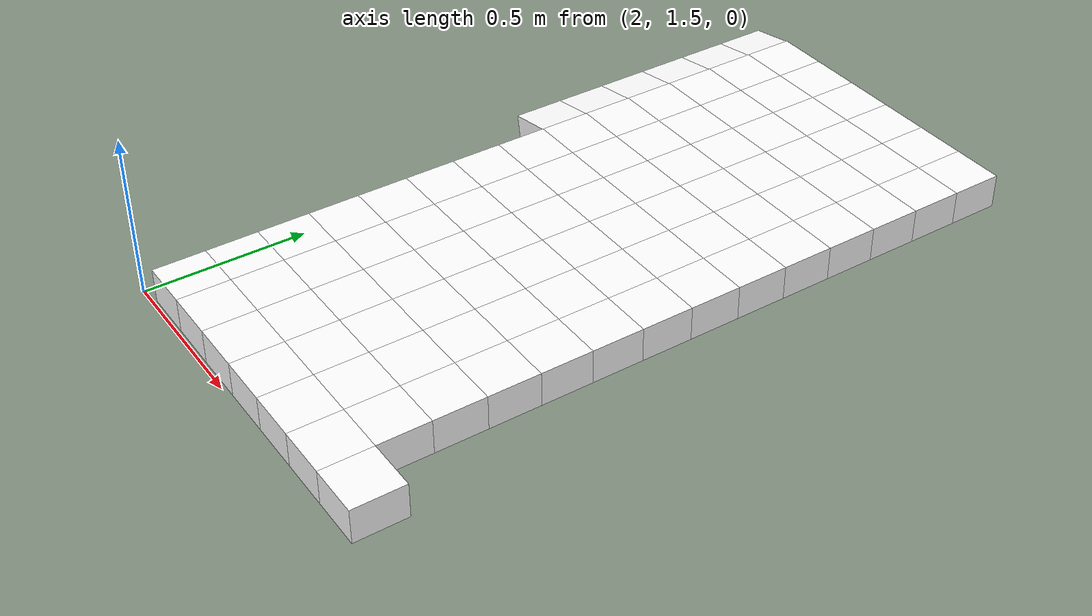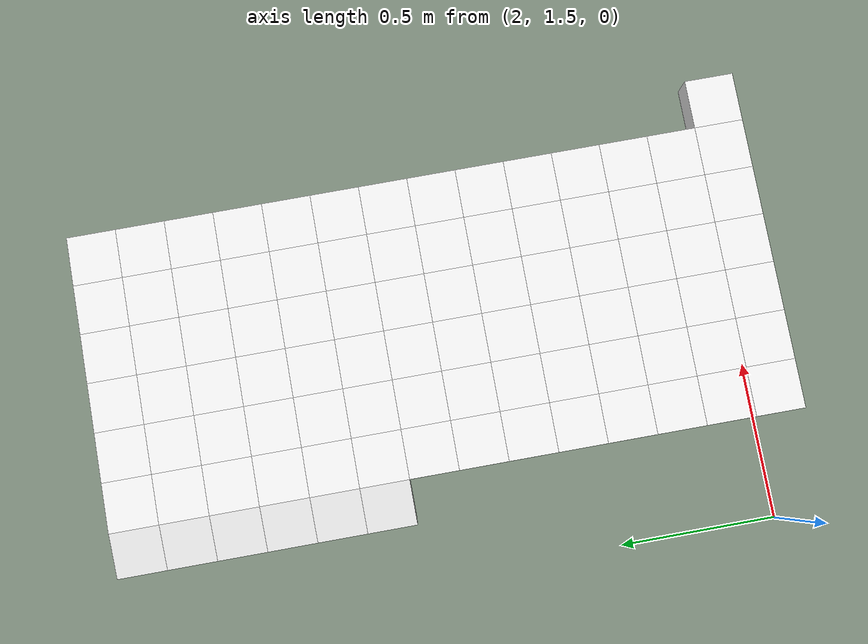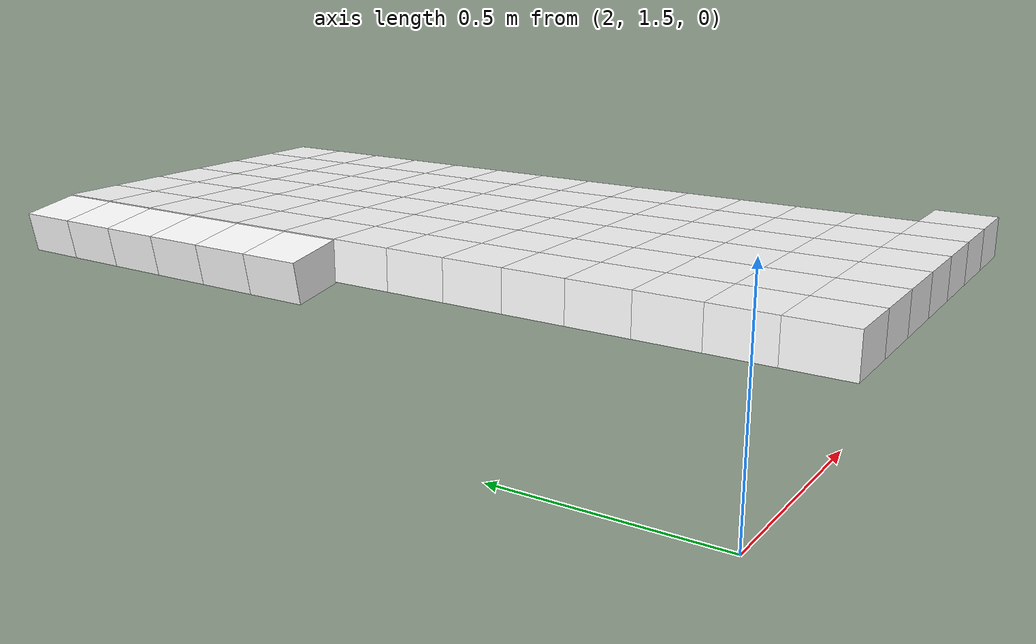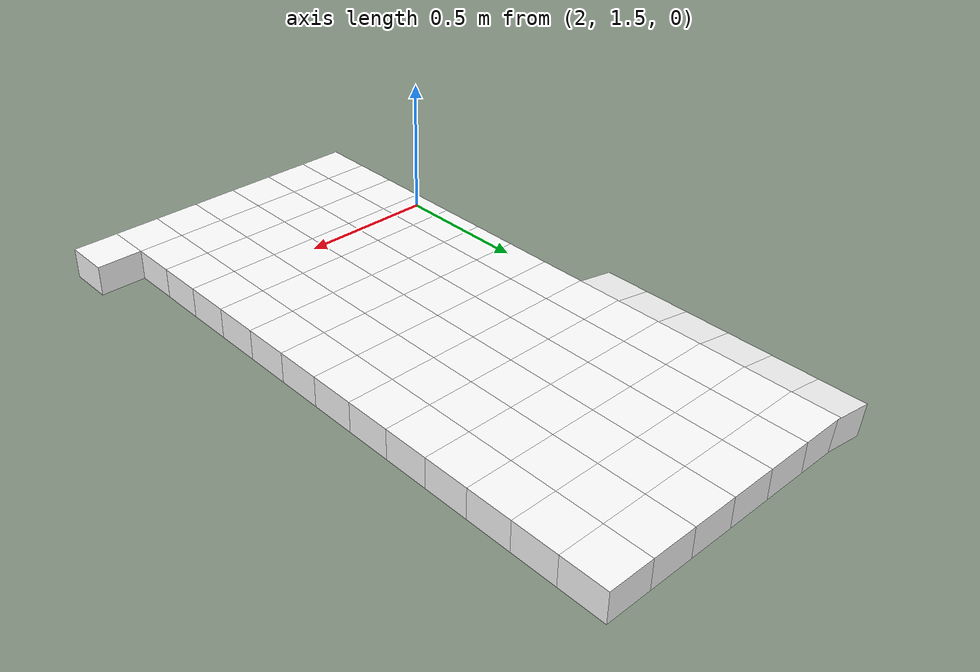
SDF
<sdf version="1.7">
 <world name="default">
  <include><uri>model://sun</uri></include>
  <model name="static_environment">
   <static>true</static>
   <link name="region_549">
    <pose>2.2721418591427653 2.6999999999999997 0.24759631532031606 0.0 -0.175 0.0</pose>
    <collision name="region_549_collision">
     <geometry><box><size>0.15 0.15 0.1</size></box></geometry>
     <surface><friction><ode><mu>1.0</mu><mu2>1.0</mu2></ode></friction></surface>
    </collision>
    <visual name="region_549_visual">
     <geometry><box><size>0.15 0.15 0.1</size></box></geometry>
     <material><ambient>1.0 1.0 1.0 1.0</ambient><diffuse>1.0 1.0 1.0 1.0</diffuse></material>
    </visual>
   </link>
   <link name="region_559">
    <pose>2.2721418591427653 2.8499999999999996 0.24759631532031606 0.0 -0.175 0.0</pose>
    <collision name="region_559_collision">
     <geometry><box><size>0.15 0.15 0.1</size></box></geometry>
     <surface><friction><ode><mu>1.0</mu><mu2>1.0</mu2></ode></friction></surface>
    </collision>
    <visual name="region_559_visual">
     <geometry><box><size>0.15 0.15 0.1</size></box></geometry>
     <material><ambient>1.0 1.0 1.0 1.0</ambient><diffuse>1.0 1.0 1.0 1.0</diffuse></material>
    </visual>
   </link>
   <link name="region_569">
    <pose>2.2721418591427653 2.9999999999999996 0.24759631532031606 0.0 -0.175 0.0</pose>
    <collision name="region_569_collision">
     <geometry><box><size>0.15 0.15 0.1</size></box></geometry>
     <surface><friction><ode><mu>1.0</mu><mu2>1.0</mu2></ode></friction></surface>
    </collision>
    <visual name="region_569_visual">
     <geometry><box><size>0.15 0.15 0.1</size></box></geometry>
     <material><ambient>1.0 1.0 1.0 1.0</ambient><diffuse>1.0 1.0 1.0 1.0</diffuse></material>
    </visual>
   </link>
   <link name="region_579">
    <pose>2.2721418591427653 3.1499999999999995 0.24759631532031606 0.0 -0.175 0.0</pose>
    <collision name="region_579_collision">
     <geometry><box><size>0.15 0.15 0.1</size></box></geometry>
     <surface><friction><ode><mu>1.0</mu><mu2>1.0</mu2></ode></friction></surface>
    </collision>
    <visual name="region_579_visual">
     <geometry><box><size>0.15 0.15 0.1</size></box></geometry>
     <material><ambient>1.0 1.0 1.0 1.0</ambient><diffuse>1.0 1.0 1.0 1.0</diffuse></material>
    </visual>
   </link>
   <link name="region_589">
    <pose>2.2721418591427653 3.2999999999999994 0.24759631532031606 0.0 -0.175 0.0</pose>
    <collision name="region_589_collision">
     <geometry><box><size>0.15 0.15 0.1</size></box></geometry>
     <surface><friction><ode><mu>1.0</mu><mu2>1.0</mu2></ode></friction></surface>
    </collision>
    <visual name="region_589_visual">
     <geometry><box><size>0.15 0.15 0.1</size></box></geometry>
     <material><ambient>1.0 1.0 1.0 1.0</ambient><diffuse>1.0 1.0 1.0 1.0</diffuse></material>
    </visual>
   </link>
   <link name="region_599">
    <pose>2.2721418591427653 3.4499999999999993 0.24759631532031606 0.0 -0.175 0.0</pose>
    <collision name="region_599_collision">
     <geometry><box><size>0.15 0.15 0.1</size></box></geometry>
     <surface><friction><ode><mu>1.0</mu><mu2>1.0</mu2></ode></friction></surface>
    </collision>
    <visual name="region_599_visual">
     <geometry><box><size>0.15 0.15 0.1</size></box></geometry>
     <material><ambient>1.0 1.0 1.0 1.0</ambient><diffuse>1.0 1.0 1.0 1.0</diffuse></material>
    </visual>
   </link>
   <link name="region_720">
    <pose>2.4000000000000004 1.5 0.26 0.0 0.0 0.0</pose>
    <collision name="region_720_collision">
     <geometry><box><size>0.15 0.15 0.1</size></box></geometry>
     <surface><friction><ode><mu>1.0</mu><mu2>1.0</mu2></ode></friction></surface>
    </collision>
    <visual name="region_720_visual">
     <geometry><box><size>0.15 0.15 0.1</size></box></geometry>
     <material><ambient>1.0 1.0 1.0 1.0</ambient><diffuse>1.0 1.0 1.0 1.0</diffuse></material>
    </visual>
   </link>
   <link name="region_721">
    <pose>2.5500000000000007 1.5 0.26 0.0 0.0 0.0</pose>
    <collision name="region_721_collision">
     <geometry><box><size>0.15 0.15 0.1</size></box></geometry>
     <surface><friction><ode><mu>1.0</mu><mu2>1.0</mu2></ode></friction></surface>
    </collision>
    <visual name="region_721_visual">
     <geometry><box><size>0.15 0.15 0.1</size></box></geometry>
     <material><ambient>1.0 1.0 1.0 1.0</ambient><diffuse>1.0 1.0 1.0 1.0</diffuse></material>
    </visual>
   </link>
   <link name="region_722">
    <pose>2.700000000000001 1.5 0.26 0.0 0.0 0.0</pose>
    <collision name="region_722_collision">
     <geometry><box><size>0.15 0.15 0.1</size></box></geometry>
     <surface><friction><ode><mu>1.0</mu><mu2>1.0</mu2></ode></friction></surface>
    </collision>
    <visual name="region_722_visual">
     <geometry><box><size>0.15 0.15 0.1</size></box></geometry>
     <material><ambient>1.0 1.0 1.0 1.0</ambient><diffuse>1.0 1.0 1.0 1.0</diffuse></material>
    </visual>
   </link>
   <link name="region_723">
    <pose>2.8500000000000014 1.5 0.26 0.0 0.0 0.0</pose>
    <collision name="region_723_collision">
     <geometry><box><size>0.15 0.15 0.1</size></box></geometry>
     <surface><friction><ode><mu>1.0</mu><mu2>1.0</mu2></ode></friction></surface>
    </collision>
    <visual name="region_723_visual">
     <geometry><box><size>0.15 0.15 0.1</size></box></geometry>
     <material><ambient>1.0 1.0 1.0 1.0</ambient><diffuse>1.0 1.0 1.0 1.0</diffuse></material>
    </visual>
   </link>
   <link name="region_724">
    <pose>3.0000000000000018 1.5 0.26 0.0 0.0 0.0</pose>
    <collision name="region_724_collision">
     <geometry><box><size>0.15 0.15 0.1</size></box></geometry>
     <surface><friction><ode><mu>1.0</mu><mu2>1.0</mu2></ode></friction></surface>
    </collision>
    <visual name="region_724_visual">
     <geometry><box><size>0.15 0.15 0.1</size></box></geometry>
     <material><ambient>1.0 1.0 1.0 1.0</ambient><diffuse>1.0 1.0 1.0 1.0</diffuse></material>
    </visual>
   </link>
   <link name="region_725">
    <pose>3.150000000000002 1.5 0.26 0.0 0.0 0.0</pose>
    <collision name="region_725_collision">
     <geometry><box><size>0.15 0.15 0.1</size></box></geometry>
     <surface><friction><ode><mu>1.0</mu><mu2>1.0</mu2></ode></friction></surface>
    </collision>
    <visual name="region_725_visual">
     <geometry><box><size>0.15 0.15 0.1</size></box></geometry>
     <material><ambient>1.0 1.0 1.0 1.0</ambient><diffuse>1.0 1.0 1.0 1.0</diffuse></material>
    </visual>
   </link>
   <link name="region_726">
    <pose>3.3000000000000025 1.5 0.26 0.0 0.0 0.0</pose>
    <collision name="region_726_collision">
     <geometry><box><size>0.15 0.15 0.1</size></box></geometry>
     <surface><friction><ode><mu>1.0</mu><mu2>1.0</mu2></ode></friction></surface>
    </collision>
    <visual name="region_726_visual">
     <geometry><box><size>0.15 0.15 0.1</size></box></geometry>
     <material><ambient>1.0 1.0 1.0 1.0</ambient><diffuse>1.0 1.0 1.0 1.0</diffuse></material>
    </visual>
   </link>
   <link name="region_740">
    <pose>2.4000000000000004 1.65 0.26 0.0 0.0 0.0</pose>
    <collision name="region_740_collision">
     <geometry><box><size>0.15 0.15 0.1</size></box></geometry>
     <surface><friction><ode><mu>1.0</mu><mu2>1.0</mu2></ode></friction></surface>
    </collision>
    <visual name="region_740_visual">
     <geometry><box><size>0.15 0.15 0.1</size></box></geometry>
     <material><ambient>1.0 1.0 1.0 1.0</ambient><diffuse>1.0 1.0 1.0 1.0</diffuse></material>
    </visual>
   </link>
   <link name="region_741">
    <pose>2.5500000000000007 1.65 0.26 0.0 0.0 0.0</pose>
    <collision name="region_741_collision">
     <geometry><box><size>0.15 0.15 0.1</size></box></geometry>
     <surface><friction><ode><mu>1.0</mu><mu2>1.0</mu2></ode></friction></surface>
    </collision>
    <visual name="region_741_visual">
     <geometry><box><size>0.15 0.15 0.1</size></box></geometry>
     <material><ambient>1.0 1.0 1.0 1.0</ambient><diffuse>1.0 1.0 1.0 1.0</diffuse></material>
    </visual>
   </link>
   <link name="region_742">
    <pose>2.700000000000001 1.65 0.26 0.0 0.0 0.0</pose>
    <collision name="region_742_collision">
     <geometry><box><size>0.15 0.15 0.1</size></box></geometry>
     <surface><friction><ode><mu>1.0</mu><mu2>1.0</mu2></ode></friction></surface>
    </collision>
    <visual name="region_742_visual">
     <geometry><box><size>0.15 0.15 0.1</size></box></geometry>
     <material><ambient>1.0 1.0 1.0 1.0</ambient><diffuse>1.0 1.0 1.0 1.0</diffuse></material>
    </visual>
   </link>
   <link name="region_743">
    <pose>2.8500000000000014 1.65 0.26 0.0 0.0 0.0</pose>
    <collision name="region_743_collision">
     <geometry><box><size>0.15 0.15 0.1</size></box></geometry>
     <surface><friction><ode><mu>1.0</mu><mu2>1.0</mu2></ode></friction></surface>
    </collision>
    <visual name="region_743_visual">
     <geometry><box><size>0.15 0.15 0.1</size></box></geometry>
     <material><ambient>1.0 1.0 1.0 1.0</ambient><diffuse>1.0 1.0 1.0 1.0</diffuse></material>
    </visual>
   </link>
   <link name="region_744">
    <pose>3.0000000000000018 1.65 0.26 0.0 0.0 0.0</pose>
    <collision name="region_744_collision">
     <geometry><box><size>0.15 0.15 0.1</size></box></geometry>
     <surface><friction><ode><mu>1.0</mu><mu2>1.0</mu2></ode></friction></surface>
    </collision>
    <visual name="region_744_visual">
     <geometry><box><size>0.15 0.15 0.1</size></box></geometry>
     <material><ambient>1.0 1.0 1.0 1.0</ambient><diffuse>1.0 1.0 1.0 1.0</diffuse></material>
    </visual>
   </link>
   <link name="region_745">
    <pose>3.150000000000002 1.65 0.26 0.0 0.0 0.0</pose>
    <collision name="region_745_collision">
     <geometry><box><size>0.15 0.15 0.1</size></box></geometry>
     <surface><friction><ode><mu>1.0</mu><mu2>1.0</mu2></ode></friction></surface>
    </collision>
    <visual name="region_745_visual">
     <geometry><box><size>0.15 0.15 0.1</size></box></geometry>
     <material><ambient>1.0 1.0 1.0 1.0</ambient><diffuse>1.0 1.0 1.0 1.0</diffuse></material>
    </visual>
   </link>
   <link name="region_760">
    <pose>2.4000000000000004 1.7999999999999998 0.26 0.0 0.0 0.0</pose>
    <collision name="region_760_collision">
     <geometry><box><size>0.15 0.15 0.1</size></box></geometry>
     <surface><friction><ode><mu>1.0</mu><mu2>1.0</mu2></ode></friction></surface>
    </collision>
    <visual name="region_760_visual">
     <geometry><box><size>0.15 0.15 0.1</size></box></geometry>
     <material><ambient>1.0 1.0 1.0 1.0</ambient><diffuse>1.0 1.0 1.0 1.0</diffuse></material>
    </visual>
   </link>
   <link name="region_761">
    <pose>2.5500000000000007 1.7999999999999998 0.26 0.0 0.0 0.0</pose>
    <collision name="region_761_collision">
     <geometry><box><size>0.15 0.15 0.1</size></box></geometry>
     <surface><friction><ode><mu>1.0</mu><mu2>1.0</mu2></ode></friction></surface>
    </collision>
    <visual name="region_761_visual">
     <geometry><box><size>0.15 0.15 0.1</size></box></geometry>
     <material><ambient>1.0 1.0 1.0 1.0</ambient><diffuse>1.0 1.0 1.0 1.0</diffuse></material>
    </visual>
   </link>
   <link name="region_762">
    <pose>2.700000000000001 1.7999999999999998 0.26 0.0 0.0 0.0</pose>
    <collision name="region_762_collision">
     <geometry><box><size>0.15 0.15 0.1</size></box></geometry>
     <surface><friction><ode><mu>1.0</mu><mu2>1.0</mu2></ode></friction></surface>
    </collision>
    <visual name="region_762_visual">
     <geometry><box><size>0.15 0.15 0.1</size></box></geometry>
     <material><ambient>1.0 1.0 1.0 1.0</ambient><diffuse>1.0 1.0 1.0 1.0</diffuse></material>
    </visual>
   </link>
   <link name="region_763">
    <pose>2.8500000000000014 1.7999999999999998 0.26 0.0 0.0 0.0</pose>
    <collision name="region_763_collision">
     <geometry><box><size>0.15 0.15 0.1</size></box></geometry>
     <surface><friction><ode><mu>1.0</mu><mu2>1.0</mu2></ode></friction></surface>
    </collision>
    <visual name="region_763_visual">
     <geometry><box><size>0.15 0.15 0.1</size></box></geometry>
     <material><ambient>1.0 1.0 1.0 1.0</ambient><diffuse>1.0 1.0 1.0 1.0</diffuse></material>
    </visual>
   </link>
   <link name="region_764">
    <pose>3.0000000000000018 1.7999999999999998 0.26 0.0 0.0 0.0</pose>
    <collision name="region_764_collision">
     <geometry><box><size>0.15 0.15 0.1</size></box></geometry>
     <surface><friction><ode><mu>1.0</mu><mu2>1.0</mu2></ode></friction></surface>
    </collision>
    <visual name="region_764_visual">
     <geometry><box><size>0.15 0.15 0.1</size></box></geometry>
     <material><ambient>1.0 1.0 1.0 1.0</ambient><diffuse>1.0 1.0 1.0 1.0</diffuse></material>
    </visual>
   </link>
   <link name="region_765">
    <pose>3.150000000000002 1.7999999999999998 0.26 0.0 0.0 0.0</pose>
    <collision name="region_765_collision">
     <geometry><box><size>0.15 0.15 0.1</size></box></geometry>
     <surface><friction><ode><mu>1.0</mu><mu2>1.0</mu2></ode></friction></surface>
    </collision>
    <visual name="region_765_visual">
     <geometry><box><size>0.15 0.15 0.1</size></box></geometry>
     <material><ambient>1.0 1.0 1.0 1.0</ambient><diffuse>1.0 1.0 1.0 1.0</diffuse></material>
    </visual>
   </link>
   <link name="region_780">
    <pose>2.4000000000000004 1.9499999999999997 0.26 0.0 0.0 0.0</pose>
    <collision name="region_780_collision">
     <geometry><box><size>0.15 0.15 0.1</size></box></geometry>
     <surface><friction><ode><mu>1.0</mu><mu2>1.0</mu2></ode></friction></surface>
    </collision>
    <visual name="region_780_visual">
     <geometry><box><size>0.15 0.15 0.1</size></box></geometry>
     <material><ambient>1.0 1.0 1.0 1.0</ambient><diffuse>1.0 1.0 1.0 1.0</diffuse></material>
    </visual>
   </link>
   <link name="region_781">
    <pose>2.5500000000000007 1.9499999999999997 0.26 0.0 0.0 0.0</pose>
    <collision name="region_781_collision">
     <geometry><box><size>0.15 0.15 0.1</size></box></geometry>
     <surface><friction><ode><mu>1.0</mu><mu2>1.0</mu2></ode></friction></surface>
    </collision>
    <visual name="region_781_visual">
     <geometry><box><size>0.15 0.15 0.1</size></box></geometry>
     <material><ambient>1.0 1.0 1.0 1.0</ambient><diffuse>1.0 1.0 1.0 1.0</diffuse></material>
    </visual>
   </link>
   <link name="region_782">
    <pose>2.700000000000001 1.9499999999999997 0.26 0.0 0.0 0.0</pose>
    <collision name="region_782_collision">
     <geometry><box><size>0.15 0.15 0.1</size></box></geometry>
     <surface><friction><ode><mu>1.0</mu><mu2>1.0</mu2></ode></friction></surface>
    </collision>
    <visual name="region_782_visual">
     <geometry><box><size>0.15 0.15 0.1</size></box></geometry>
     <material><ambient>1.0 1.0 1.0 1.0</ambient><diffuse>1.0 1.0 1.0 1.0</diffuse></material>
    </visual>
   </link>
   <link name="region_783">
    <pose>2.8500000000000014 1.9499999999999997 0.26 0.0 0.0 0.0</pose>
    <collision name="region_783_collision">
     <geometry><box><size>0.15 0.15 0.1</size></box></geometry>
     <surface><friction><ode><mu>1.0</mu><mu2>1.0</mu2></ode></friction></surface>
    </collision>
    <visual name="region_783_visual">
     <geometry><box><size>0.15 0.15 0.1</size></box></geometry>
     <material><ambient>1.0 1.0 1.0 1.0</ambient><diffuse>1.0 1.0 1.0 1.0</diffuse></material>
    </visual>
   </link>
   <link name="region_784">
    <pose>3.0000000000000018 1.9499999999999997 0.26 0.0 0.0 0.0</pose>
    <collision name="region_784_collision">
     <geometry><box><size>0.15 0.15 0.1</size></box></geometry>
     <surface><friction><ode><mu>1.0</mu><mu2>1.0</mu2></ode></friction></surface>
    </collision>
    <visual name="region_784_visual">
     <geometry><box><size>0.15 0.15 0.1</size></box></geometry>
     <material><ambient>1.0 1.0 1.0 1.0</ambient><diffuse>1.0 1.0 1.0 1.0</diffuse></material>
    </visual>
   </link>
   <link name="region_785">
    <pose>3.150000000000002 1.9499999999999997 0.26 0.0 0.0 0.0</pose>
    <collision name="region_785_collision">
     <geometry><box><size>0.15 0.15 0.1</size></box></geometry>
     <surface><friction><ode><mu>1.0</mu><mu2>1.0</mu2></ode></friction></surface>
    </collision>
    <visual name="region_785_visual">
     <geometry><box><size>0.15 0.15 0.1</size></box></geometry>
     <material><ambient>1.0 1.0 1.0 1.0</ambient><diffuse>1.0 1.0 1.0 1.0</diffuse></material>
    </visual>
   </link>
   <link name="region_800">
    <pose>2.4000000000000004 2.0999999999999996 0.26 0.0 0.0 0.0</pose>
    <collision name="region_800_collision">
     <geometry><box><size>0.15 0.15 0.1</size></box></geometry>
     <surface><friction><ode><mu>1.0</mu><mu2>1.0</mu2></ode></friction></surface>
    </collision>
    <visual name="region_800_visual">
     <geometry><box><size>0.15 0.15 0.1</size></box></geometry>
     <material><ambient>1.0 1.0 1.0 1.0</ambient><diffuse>1.0 1.0 1.0 1.0</diffuse></material>
    </visual>
   </link>
   <link name="region_801">
    <pose>2.5500000000000007 2.0999999999999996 0.26 0.0 0.0 0.0</pose>
    <collision name="region_801_collision">
     <geometry><box><size>0.15 0.15 0.1</size></box></geometry>
     <surface><friction><ode><mu>1.0</mu><mu2>1.0</mu2></ode></friction></surface>
    </collision>
    <visual name="region_801_visual">
     <geometry><box><size>0.15 0.15 0.1</size></box></geometry>
     <material><ambient>1.0 1.0 1.0 1.0</ambient><diffuse>1.0 1.0 1.0 1.0</diffuse></material>
    </visual>
   </link>
   <link name="region_802">
    <pose>2.700000000000001 2.0999999999999996 0.26 0.0 0.0 0.0</pose>
    <collision name="region_802_collision">
     <geometry><box><size>0.15 0.15 0.1</size></box></geometry>
     <surface><friction><ode><mu>1.0</mu><mu2>1.0</mu2></ode></friction></surface>
    </collision>
    <visual name="region_802_visual">
     <geometry><box><size>0.15 0.15 0.1</size></box></geometry>
     <material><ambient>1.0 1.0 1.0 1.0</ambient><diffuse>1.0 1.0 1.0 1.0</diffuse></material>
    </visual>
   </link>
   <link name="region_803">
    <pose>2.8500000000000014 2.0999999999999996 0.26 0.0 0.0 0.0</pose>
    <collision name="region_803_collision">
     <geometry><box><size>0.15 0.15 0.1</size></box></geometry>
     <surface><friction><ode><mu>1.0</mu><mu2>1.0</mu2></ode></friction></surface>
    </collision>
    <visual name="region_803_visual">
     <geometry><box><size>0.15 0.15 0.1</size></box></geometry>
     <material><ambient>1.0 1.0 1.0 1.0</ambient><diffuse>1.0 1.0 1.0 1.0</diffuse></material>
    </visual>
   </link>
   <link name="region_804">
    <pose>3.0000000000000018 2.0999999999999996 0.26 0.0 0.0 0.0</pose>
    <collision name="region_804_collision">
     <geometry><box><size>0.15 0.15 0.1</size></box></geometry>
     <surface><friction><ode><mu>1.0</mu><mu2>1.0</mu2></ode></friction></surface>
    </collision>
    <visual name="region_804_visual">
     <geometry><box><size>0.15 0.15 0.1</size></box></geometry>
     <material><ambient>1.0 1.0 1.0 1.0</ambient><diffuse>1.0 1.0 1.0 1.0</diffuse></material>
    </visual>
   </link>
   <link name="region_805">
    <pose>3.150000000000002 2.0999999999999996 0.26 0.0 0.0 0.0</pose>
    <collision name="region_805_collision">
     <geometry><box><size>0.15 0.15 0.1</size></box></geometry>
     <surface><friction><ode><mu>1.0</mu><mu2>1.0</mu2></ode></friction></surface>
    </collision>
    <visual name="region_805_visual">
     <geometry><box><size>0.15 0.15 0.1</size></box></geometry>
     <material><ambient>1.0 1.0 1.0 1.0</ambient><diffuse>1.0 1.0 1.0 1.0</diffuse></material>
    </visual>
   </link>
   <link name="region_820">
    <pose>2.4000000000000004 2.2499999999999996 0.26 0.0 0.0 0.0</pose>
    <collision name="region_820_collision">
     <geometry><box><size>0.15 0.15 0.1</size></box></geometry>
     <surface><friction><ode><mu>1.0</mu><mu2>1.0</mu2></ode></friction></surface>
    </collision>
    <visual name="region_820_visual">
     <geometry><box><size>0.15 0.15 0.1</size></box></geometry>
     <material><ambient>1.0 1.0 1.0 1.0</ambient><diffuse>1.0 1.0 1.0 1.0</diffuse></material>
    </visual>
   </link>
   <link name="region_821">
    <pose>2.5500000000000007 2.2499999999999996 0.26 0.0 0.0 0.0</pose>
    <collision name="region_821_collision">
     <geometry><box><size>0.15 0.15 0.1</size></box></geometry>
     <surface><friction><ode><mu>1.0</mu><mu2>1.0</mu2></ode></friction></surface>
    </collision>
    <visual name="region_821_visual">
     <geometry><box><size>0.15 0.15 0.1</size></box></geometry>
     <material><ambient>1.0 1.0 1.0 1.0</ambient><diffuse>1.0 1.0 1.0 1.0</diffuse></material>
    </visual>
   </link>
   <link name="region_822">
    <pose>2.700000000000001 2.2499999999999996 0.26 0.0 0.0 0.0</pose>
    <collision name="region_822_collision">
     <geometry><box><size>0.15 0.15 0.1</size></box></geometry>
     <surface><friction><ode><mu>1.0</mu><mu2>1.0</mu2></ode></friction></surface>
    </collision>
    <visual name="region_822_visual">
     <geometry><box><size>0.15 0.15 0.1</size></box></geometry>
     <material><ambient>1.0 1.0 1.0 1.0</ambient><diffuse>1.0 1.0 1.0 1.0</diffuse></material>
    </visual>
   </link>
   <link name="region_823">
    <pose>2.8500000000000014 2.2499999999999996 0.26 0.0 0.0 0.0</pose>
    <collision name="region_823_collision">
     <geometry><box><size>0.15 0.15 0.1</size></box></geometry>
     <surface><friction><ode><mu>1.0</mu><mu2>1.0</mu2></ode></friction></surface>
    </collision>
    <visual name="region_823_visual">
     <geometry><box><size>0.15 0.15 0.1</size></box></geometry>
     <material><ambient>1.0 1.0 1.0 1.0</ambient><diffuse>1.0 1.0 1.0 1.0</diffuse></material>
    </visual>
   </link>
   <link name="region_824">
    <pose>3.0000000000000018 2.2499999999999996 0.26 0.0 0.0 0.0</pose>
    <collision name="region_824_collision">
     <geometry><box><size>0.15 0.15 0.1</size></box></geometry>
     <surface><friction><ode><mu>1.0</mu><mu2>1.0</mu2></ode></friction></surface>
    </collision>
    <visual name="region_824_visual">
     <geometry><box><size>0.15 0.15 0.1</size></box></geometry>
     <material><ambient>1.0 1.0 1.0 1.0</ambient><diffuse>1.0 1.0 1.0 1.0</diffuse></material>
    </visual>
   </link>
   <link name="region_825">
    <pose>3.150000000000002 2.2499999999999996 0.26 0.0 0.0 0.0</pose>
    <collision name="region_825_collision">
     <geometry><box><size>0.15 0.15 0.1</size></box></geometry>
     <surface><friction><ode><mu>1.0</mu><mu2>1.0</mu2></ode></friction></surface>
    </collision>
    <visual name="region_825_visual">
     <geometry><box><size>0.15 0.15 0.1</size></box></geometry>
     <material><ambient>1.0 1.0 1.0 1.0</ambient><diffuse>1.0 1.0 1.0 1.0</diffuse></material>
    </visual>
   </link>
   <link name="region_840">
    <pose>2.4000000000000004 2.3999999999999995 0.26 0.0 0.0 0.0</pose>
    <collision name="region_840_collision">
     <geometry><box><size>0.15 0.15 0.1</size></box></geometry>
     <surface><friction><ode><mu>1.0</mu><mu2>1.0</mu2></ode></friction></surface>
    </collision>
    <visual name="region_840_visual">
     <geometry><box><size>0.15 0.15 0.1</size></box></geometry>
     <material><ambient>1.0 1.0 1.0 1.0</ambient><diffuse>1.0 1.0 1.0 1.0</diffuse></material>
    </visual>
   </link>
   <link name="region_841">
    <pose>2.5500000000000007 2.3999999999999995 0.26 0.0 0.0 0.0</pose>
    <collision name="region_841_collision">
     <geometry><box><size>0.15 0.15 0.1</size></box></geometry>
     <surface><friction><ode><mu>1.0</mu><mu2>1.0</mu2></ode></friction></surface>
    </collision>
    <visual name="region_841_visual">
     <geometry><box><size>0.15 0.15 0.1</size></box></geometry>
     <material><ambient>1.0 1.0 1.0 1.0</ambient><diffuse>1.0 1.0 1.0 1.0</diffuse></material>
    </visual>
   </link>
   <link name="region_842">
    <pose>2.700000000000001 2.3999999999999995 0.26 0.0 0.0 0.0</pose>
    <collision name="region_842_collision">
     <geometry><box><size>0.15 0.15 0.1</size></box></geometry>
     <surface><friction><ode><mu>1.0</mu><mu2>1.0</mu2></ode></friction></surface>
    </collision>
    <visual name="region_842_visual">
     <geometry><box><size>0.15 0.15 0.1</size></box></geometry>
     <material><ambient>1.0 1.0 1.0 1.0</ambient><diffuse>1.0 1.0 1.0 1.0</diffuse></material>
    </visual>
   </link>
   <link name="region_843">
    <pose>2.8500000000000014 2.3999999999999995 0.26 0.0 0.0 0.0</pose>
    <collision name="region_843_collision">
     <geometry><box><size>0.15 0.15 0.1</size></box></geometry>
     <surface><friction><ode><mu>1.0</mu><mu2>1.0</mu2></ode></friction></surface>
    </collision>
    <visual name="region_843_visual">
     <geometry><box><size>0.15 0.15 0.1</size></box></geometry>
     <material><ambient>1.0 1.0 1.0 1.0</ambient><diffuse>1.0 1.0 1.0 1.0</diffuse></material>
    </visual>
   </link>
   <link name="region_844">
    <pose>3.0000000000000018 2.3999999999999995 0.26 0.0 0.0 0.0</pose>
    <collision name="region_844_collision">
     <geometry><box><size>0.15 0.15 0.1</size></box></geometry>
     <surface><friction><ode><mu>1.0</mu><mu2>1.0</mu2></ode></friction></surface>
    </collision>
    <visual name="region_844_visual">
     <geometry><box><size>0.15 0.15 0.1</size></box></geometry>
     <material><ambient>1.0 1.0 1.0 1.0</ambient><diffuse>1.0 1.0 1.0 1.0</diffuse></material>
    </visual>
   </link>
   <link name="region_845">
    <pose>3.150000000000002 2.3999999999999995 0.26 0.0 0.0 0.0</pose>
    <collision name="region_845_collision">
     <geometry><box><size>0.15 0.15 0.1</size></box></geometry>
     <surface><friction><ode><mu>1.0</mu><mu2>1.0</mu2></ode></friction></surface>
    </collision>
    <visual name="region_845_visual">
     <geometry><box><size>0.15 0.15 0.1</size></box></geometry>
     <material><ambient>1.0 1.0 1.0 1.0</ambient><diffuse>1.0 1.0 1.0 1.0</diffuse></material>
    </visual>
   </link>
   <link name="region_860">
    <pose>2.4000000000000004 2.5499999999999994 0.26 0.0 0.0 0.0</pose>
    <collision name="region_860_collision">
     <geometry><box><size>0.15 0.15 0.1</size></box></geometry>
     <surface><friction><ode><mu>1.0</mu><mu2>1.0</mu2></ode></friction></surface>
    </collision>
    <visual name="region_860_visual">
     <geometry><box><size>0.15 0.15 0.1</size></box></geometry>
     <material><ambient>1.0 1.0 1.0 1.0</ambient><diffuse>1.0 1.0 1.0 1.0</diffuse></material>
    </visual>
   </link>
   <link name="region_861">
    <pose>2.5500000000000007 2.5499999999999994 0.26 0.0 0.0 0.0</pose>
    <collision name="region_861_collision">
     <geometry><box><size>0.15 0.15 0.1</size></box></geometry>
     <surface><friction><ode><mu>1.0</mu><mu2>1.0</mu2></ode></friction></surface>
    </collision>
    <visual name="region_861_visual">
     <geometry><box><size>0.15 0.15 0.1</size></box></geometry>
     <material><ambient>1.0 1.0 1.0 1.0</ambient><diffuse>1.0 1.0 1.0 1.0</diffuse></material>
    </visual>
   </link>
   <link name="region_862">
    <pose>2.700000000000001 2.5499999999999994 0.26 0.0 0.0 0.0</pose>
    <collision name="region_862_collision">
     <geometry><box><size>0.15 0.15 0.1</size></box></geometry>
     <surface><friction><ode><mu>1.0</mu><mu2>1.0</mu2></ode></friction></surface>
    </collision>
    <visual name="region_862_visual">
     <geometry><box><size>0.15 0.15 0.1</size></box></geometry>
     <material><ambient>1.0 1.0 1.0 1.0</ambient><diffuse>1.0 1.0 1.0 1.0</diffuse></material>
    </visual>
   </link>
   <link name="region_863">
    <pose>2.8500000000000014 2.5499999999999994 0.26 0.0 0.0 0.0</pose>
    <collision name="region_863_collision">
     <geometry><box><size>0.15 0.15 0.1</size></box></geometry>
     <surface><friction><ode><mu>1.0</mu><mu2>1.0</mu2></ode></friction></surface>
    </collision>
    <visual name="region_863_visual">
     <geometry><box><size>0.15 0.15 0.1</size></box></geometry>
     <material><ambient>1.0 1.0 1.0 1.0</ambient><diffuse>1.0 1.0 1.0 1.0</diffuse></material>
    </visual>
   </link>
   <link name="region_864">
    <pose>3.0000000000000018 2.5499999999999994 0.26 0.0 0.0 0.0</pose>
    <collision name="region_864_collision">
     <geometry><box><size>0.15 0.15 0.1</size></box></geometry>
     <surface><friction><ode><mu>1.0</mu><mu2>1.0</mu2></ode></friction></surface>
    </collision>
    <visual name="region_864_visual">
     <geometry><box><size>0.15 0.15 0.1</size></box></geometry>
     <material><ambient>1.0 1.0 1.0 1.0</ambient><diffuse>1.0 1.0 1.0 1.0</diffuse></material>
    </visual>
   </link>
   <link name="region_865">
    <pose>3.150000000000002 2.5499999999999994 0.26 0.0 0.0 0.0</pose>
    <collision name="region_865_collision">
     <geometry><box><size>0.15 0.15 0.1</size></box></geometry>
     <surface><friction><ode><mu>1.0</mu><mu2>1.0</mu2></ode></friction></surface>
    </collision>
    <visual name="region_865_visual">
     <geometry><box><size>0.15 0.15 0.1</size></box></geometry>
     <material><ambient>1.0 1.0 1.0 1.0</ambient><diffuse>1.0 1.0 1.0 1.0</diffuse></material>
    </visual>
   </link>
   <link name="region_880">
    <pose>2.4000000000000004 2.6999999999999997 0.26 0.0 0.0 0.0</pose>
    <collision name="region_880_collision">
     <geometry><box><size>0.15 0.15 0.1</size></box></geometry>
     <surface><friction><ode><mu>1.0</mu><mu2>1.0</mu2></ode></friction></surface>
    </collision>
    <visual name="region_880_visual">
     <geometry><box><size>0.15 0.15 0.1</size></box></geometry>
     <material><ambient>1.0 1.0 1.0 1.0</ambient><diffuse>1.0 1.0 1.0 1.0</diffuse></material>
    </visual>
   </link>
   <link name="region_881">
    <pose>2.5500000000000007 2.6999999999999997 0.26 0.0 0.0 0.0</pose>
    <collision name="region_881_collision">
     <geometry><box><size>0.15 0.15 0.1</size></box></geometry>
     <surface><friction><ode><mu>1.0</mu><mu2>1.0</mu2></ode></friction></surface>
    </collision>
    <visual name="region_881_visual">
     <geometry><box><size>0.15 0.15 0.1</size></box></geometry>
     <material><ambient>1.0 1.0 1.0 1.0</ambient><diffuse>1.0 1.0 1.0 1.0</diffuse></material>
    </visual>
   </link>
   <link name="region_882">
    <pose>2.700000000000001 2.6999999999999997 0.26 0.0 0.0 0.0</pose>
    <collision name="region_882_collision">
     <geometry><box><size>0.15 0.15 0.1</size></box></geometry>
     <surface><friction><ode><mu>1.0</mu><mu2>1.0</mu2></ode></friction></surface>
    </collision>
    <visual name="region_882_visual">
     <geometry><box><size>0.15 0.15 0.1</size></box></geometry>
     <material><ambient>1.0 1.0 1.0 1.0</ambient><diffuse>1.0 1.0 1.0 1.0</diffuse></material>
    </visual>
   </link>
   <link name="region_883">
    <pose>2.8500000000000014 2.6999999999999997 0.26 0.0 0.0 0.0</pose>
    <collision name="region_883_collision">
     <geometry><box><size>0.15 0.15 0.1</size></box></geometry>
     <surface><friction><ode><mu>1.0</mu><mu2>1.0</mu2></ode></friction></surface>
    </collision>
    <visual name="region_883_visual">
     <geometry><box><size>0.15 0.15 0.1</size></box></geometry>
     <material><ambient>1.0 1.0 1.0 1.0</ambient><diffuse>1.0 1.0 1.0 1.0</diffuse></material>
    </visual>
   </link>
   <link name="region_884">
    <pose>3.0000000000000018 2.6999999999999997 0.26 0.0 0.0 0.0</pose>
    <collision name="region_884_collision">
     <geometry><box><size>0.15 0.15 0.1</size></box></geometry>
     <surface><friction><ode><mu>1.0</mu><mu2>1.0</mu2></ode></friction></surface>
    </collision>
    <visual name="region_884_visual">
     <geometry><box><size>0.15 0.15 0.1</size></box></geometry>
     <material><ambient>1.0 1.0 1.0 1.0</ambient><diffuse>1.0 1.0 1.0 1.0</diffuse></material>
    </visual>
   </link>
   <link name="region_885">
    <pose>3.150000000000002 2.6999999999999997 0.26 0.0 0.0 0.0</pose>
    <collision name="region_885_collision">
     <geometry><box><size>0.15 0.15 0.1</size></box></geometry>
     <surface><friction><ode><mu>1.0</mu><mu2>1.0</mu2></ode></friction></surface>
    </collision>
    <visual name="region_885_visual">
     <geometry><box><size>0.15 0.15 0.1</size></box></geometry>
     <material><ambient>1.0 1.0 1.0 1.0</ambient><diffuse>1.0 1.0 1.0 1.0</diffuse></material>
    </visual>
   </link>
   <link name="region_900">
    <pose>2.4000000000000004 2.8499999999999996 0.26 0.0 0.0 0.0</pose>
    <collision name="region_900_collision">
     <geometry><box><size>0.15 0.15 0.1</size></box></geometry>
     <surface><friction><ode><mu>1.0</mu><mu2>1.0</mu2></ode></friction></surface>
    </collision>
    <visual name="region_900_visual">
     <geometry><box><size>0.15 0.15 0.1</size></box></geometry>
     <material><ambient>1.0 1.0 1.0 1.0</ambient><diffuse>1.0 1.0 1.0 1.0</diffuse></material>
    </visual>
   </link>
   <link name="region_901">
    <pose>2.5500000000000007 2.8499999999999996 0.26 0.0 0.0 0.0</pose>
    <collision name="region_901_collision">
     <geometry><box><size>0.15 0.15 0.1</size></box></geometry>
     <surface><friction><ode><mu>1.0</mu><mu2>1.0</mu2></ode></friction></surface>
    </collision>
    <visual name="region_901_visual">
     <geometry><box><size>0.15 0.15 0.1</size></box></geometry>
     <material><ambient>1.0 1.0 1.0 1.0</ambient><diffuse>1.0 1.0 1.0 1.0</diffuse></material>
    </visual>
   </link>
   <link name="region_902">
    <pose>2.700000000000001 2.8499999999999996 0.26 0.0 0.0 0.0</pose>
    <collision name="region_902_collision">
     <geometry><box><size>0.15 0.15 0.1</size></box></geometry>
     <surface><friction><ode><mu>1.0</mu><mu2>1.0</mu2></ode></friction></surface>
    </collision>
    <visual name="region_902_visual">
     <geometry><box><size>0.15 0.15 0.1</size></box></geometry>
     <material><ambient>1.0 1.0 1.0 1.0</ambient><diffuse>1.0 1.0 1.0 1.0</diffuse></material>
    </visual>
   </link>
   <link name="region_903">
    <pose>2.8500000000000014 2.8499999999999996 0.26 0.0 0.0 0.0</pose>
    <collision name="region_903_collision">
     <geometry><box><size>0.15 0.15 0.1</size></box></geometry>
     <surface><friction><ode><mu>1.0</mu><mu2>1.0</mu2></ode></friction></surface>
    </collision>
    <visual name="region_903_visual">
     <geometry><box><size>0.15 0.15 0.1</size></box></geometry>
     <material><ambient>1.0 1.0 1.0 1.0</ambient><diffuse>1.0 1.0 1.0 1.0</diffuse></material>
    </visual>
   </link>
   <link name="region_904">
    <pose>3.0000000000000018 2.8499999999999996 0.26 0.0 0.0 0.0</pose>
    <collision name="region_904_collision">
     <geometry><box><size>0.15 0.15 0.1</size></box></geometry>
     <surface><friction><ode><mu>1.0</mu><mu2>1.0</mu2></ode></friction></surface>
    </collision>
    <visual name="region_904_visual">
     <geometry><box><size>0.15 0.15 0.1</size></box></geometry>
     <material><ambient>1.0 1.0 1.0 1.0</ambient><diffuse>1.0 1.0 1.0 1.0</diffuse></material>
    </visual>
   </link>
   <link name="region_905">
    <pose>3.150000000000002 2.8499999999999996 0.26 0.0 0.0 0.0</pose>
    <collision name="region_905_collision">
     <geometry><box><size>0.15 0.15 0.1</size></box></geometry>
     <surface><friction><ode><mu>1.0</mu><mu2>1.0</mu2></ode></friction></surface>
    </collision>
    <visual name="region_905_visual">
     <geometry><box><size>0.15 0.15 0.1</size></box></geometry>
     <material><ambient>1.0 1.0 1.0 1.0</ambient><diffuse>1.0 1.0 1.0 1.0</diffuse></material>
    </visual>
   </link>
   <link name="region_920">
    <pose>2.4000000000000004 2.9999999999999996 0.26 0.0 0.0 0.0</pose>
    <collision name="region_920_collision">
     <geometry><box><size>0.15 0.15 0.1</size></box></geometry>
     <surface><friction><ode><mu>1.0</mu><mu2>1.0</mu2></ode></friction></surface>
    </collision>
    <visual name="region_920_visual">
     <geometry><box><size>0.15 0.15 0.1</size></box></geometry>
     <material><ambient>1.0 1.0 1.0 1.0</ambient><diffuse>1.0 1.0 1.0 1.0</diffuse></material>
    </visual>
   </link>
   <link name="region_921">
    <pose>2.5500000000000007 2.9999999999999996 0.26 0.0 0.0 0.0</pose>
    <collision name="region_921_collision">
     <geometry><box><size>0.15 0.15 0.1</size></box></geometry>
     <surface><friction><ode><mu>1.0</mu><mu2>1.0</mu2></ode></friction></surface>
    </collision>
    <visual name="region_921_visual">
     <geometry><box><size>0.15 0.15 0.1</size></box></geometry>
     <material><ambient>1.0 1.0 1.0 1.0</ambient><diffuse>1.0 1.0 1.0 1.0</diffuse></material>
    </visual>
   </link>
   <link name="region_922">
    <pose>2.700000000000001 2.9999999999999996 0.26 0.0 0.0 0.0</pose>
    <collision name="region_922_collision">
     <geometry><box><size>0.15 0.15 0.1</size></box></geometry>
     <surface><friction><ode><mu>1.0</mu><mu2>1.0</mu2></ode></friction></surface>
    </collision>
    <visual name="region_922_visual">
     <geometry><box><size>0.15 0.15 0.1</size></box></geometry>
     <material><ambient>1.0 1.0 1.0 1.0</ambient><diffuse>1.0 1.0 1.0 1.0</diffuse></material>
    </visual>
   </link>
   <link name="region_923">
    <pose>2.8500000000000014 2.9999999999999996 0.26 0.0 0.0 0.0</pose>
    <collision name="region_923_collision">
     <geometry><box><size>0.15 0.15 0.1</size></box></geometry>
     <surface><friction><ode><mu>1.0</mu><mu2>1.0</mu2></ode></friction></surface>
    </collision>
    <visual name="region_923_visual">
     <geometry><box><size>0.15 0.15 0.1</size></box></geometry>
     <material><ambient>1.0 1.0 1.0 1.0</ambient><diffuse>1.0 1.0 1.0 1.0</diffuse></material>
    </visual>
   </link>
   <link name="region_924">
    <pose>3.0000000000000018 2.9999999999999996 0.26 0.0 0.0 0.0</pose>
    <collision name="region_924_collision">
     <geometry><box><size>0.15 0.15 0.1</size></box></geometry>
     <surface><friction><ode><mu>1.0</mu><mu2>1.0</mu2></ode></friction></surface>
    </collision>
    <visual name="region_924_visual">
     <geometry><box><size>0.15 0.15 0.1</size></box></geometry>
     <material><ambient>1.0 1.0 1.0 1.0</ambient><diffuse>1.0 1.0 1.0 1.0</diffuse></material>
    </visual>
   </link>
   <link name="region_925">
    <pose>3.150000000000002 2.9999999999999996 0.26 0.0 0.0 0.0</pose>
    <collision name="region_925_collision">
     <geometry><box><size>0.15 0.15 0.1</size></box></geometry>
     <surface><friction><ode><mu>1.0</mu><mu2>1.0</mu2></ode></friction></surface>
    </collision>
    <visual name="region_925_visual">
     <geometry><box><size>0.15 0.15 0.1</size></box></geometry>
     <material><ambient>1.0 1.0 1.0 1.0</ambient><diffuse>1.0 1.0 1.0 1.0</diffuse></material>
    </visual>
   </link>
   <link name="region_940">
    <pose>2.4000000000000004 3.1499999999999995 0.26 0.0 0.0 0.0</pose>
    <collision name="region_940_collision">
     <geometry><box><size>0.15 0.15 0.1</size></box></geometry>
     <surface><friction><ode><mu>1.0</mu><mu2>1.0</mu2></ode></friction></surface>
    </collision>
    <visual name="region_940_visual">
     <geometry><box><size>0.15 0.15 0.1</size></box></geometry>
     <material><ambient>1.0 1.0 1.0 1.0</ambient><diffuse>1.0 1.0 1.0 1.0</diffuse></material>
    </visual>
   </link>
   <link name="region_941">
    <pose>2.5500000000000007 3.1499999999999995 0.26 0.0 0.0 0.0</pose>
    <collision name="region_941_collision">
     <geometry><box><size>0.15 0.15 0.1</size></box></geometry>
     <surface><friction><ode><mu>1.0</mu><mu2>1.0</mu2></ode></friction></surface>
    </collision>
    <visual name="region_941_visual">
     <geometry><box><size>0.15 0.15 0.1</size></box></geometry>
     <material><ambient>1.0 1.0 1.0 1.0</ambient><diffuse>1.0 1.0 1.0 1.0</diffuse></material>
    </visual>
   </link>
   <link name="region_942">
    <pose>2.700000000000001 3.1499999999999995 0.26 0.0 0.0 0.0</pose>
    <collision name="region_942_collision">
     <geometry><box><size>0.15 0.15 0.1</size></box></geometry>
     <surface><friction><ode><mu>1.0</mu><mu2>1.0</mu2></ode></friction></surface>
    </collision>
    <visual name="region_942_visual">
     <geometry><box><size>0.15 0.15 0.1</size></box></geometry>
     <material><ambient>1.0 1.0 1.0 1.0</ambient><diffuse>1.0 1.0 1.0 1.0</diffuse></material>
    </visual>
   </link>
   <link name="region_943">
    <pose>2.8500000000000014 3.1499999999999995 0.26 0.0 0.0 0.0</pose>
    <collision name="region_943_collision">
     <geometry><box><size>0.15 0.15 0.1</size></box></geometry>
     <surface><friction><ode><mu>1.0</mu><mu2>1.0</mu2></ode></friction></surface>
    </collision>
    <visual name="region_943_visual">
     <geometry><box><size>0.15 0.15 0.1</size></box></geometry>
     <material><ambient>1.0 1.0 1.0 1.0</ambient><diffuse>1.0 1.0 1.0 1.0</diffuse></material>
    </visual>
   </link>
   <link name="region_944">
    <pose>3.0000000000000018 3.1499999999999995 0.26 0.0 0.0 0.0</pose>
    <collision name="region_944_collision">
     <geometry><box><size>0.15 0.15 0.1</size></box></geometry>
     <surface><friction><ode><mu>1.0</mu><mu2>1.0</mu2></ode></friction></surface>
    </collision>
    <visual name="region_944_visual">
     <geometry><box><size>0.15 0.15 0.1</size></box></geometry>
     <material><ambient>1.0 1.0 1.0 1.0</ambient><diffuse>1.0 1.0 1.0 1.0</diffuse></material>
    </visual>
   </link>
   <link name="region_945">
    <pose>3.150000000000002 3.1499999999999995 0.26 0.0 0.0 0.0</pose>
    <collision name="region_945_collision">
     <geometry><box><size>0.15 0.15 0.1</size></box></geometry>
     <surface><friction><ode><mu>1.0</mu><mu2>1.0</mu2></ode></friction></surface>
    </collision>
    <visual name="region_945_visual">
     <geometry><box><size>0.15 0.15 0.1</size></box></geometry>
     <material><ambient>1.0 1.0 1.0 1.0</ambient><diffuse>1.0 1.0 1.0 1.0</diffuse></material>
    </visual>
   </link>
   <link name="region_960">
    <pose>2.4000000000000004 3.2999999999999994 0.26 0.0 0.0 0.0</pose>
    <collision name="region_960_collision">
     <geometry><box><size>0.15 0.15 0.1</size></box></geometry>
     <surface><friction><ode><mu>1.0</mu><mu2>1.0</mu2></ode></friction></surface>
    </collision>
    <visual name="region_960_visual">
     <geometry><box><size>0.15 0.15 0.1</size></box></geometry>
     <material><ambient>1.0 1.0 1.0 1.0</ambient><diffuse>1.0 1.0 1.0 1.0</diffuse></material>
    </visual>
   </link>
   <link name="region_961">
    <pose>2.5500000000000007 3.2999999999999994 0.26 0.0 0.0 0.0</pose>
    <collision name="region_961_collision">
     <geometry><box><size>0.15 0.15 0.1</size></box></geometry>
     <surface><friction><ode><mu>1.0</mu><mu2>1.0</mu2></ode></friction></surface>
    </collision>
    <visual name="region_961_visual">
     <geometry><box><size>0.15 0.15 0.1</size></box></geometry>
     <material><ambient>1.0 1.0 1.0 1.0</ambient><diffuse>1.0 1.0 1.0 1.0</diffuse></material>
    </visual>
   </link>
   <link name="region_962">
    <pose>2.700000000000001 3.2999999999999994 0.26 0.0 0.0 0.0</pose>
    <collision name="region_962_collision">
     <geometry><box><size>0.15 0.15 0.1</size></box></geometry>
     <surface><friction><ode><mu>1.0</mu><mu2>1.0</mu2></ode></friction></surface>
    </collision>
    <visual name="region_962_visual">
     <geometry><box><size>0.15 0.15 0.1</size></box></geometry>
     <material><ambient>1.0 1.0 1.0 1.0</ambient><diffuse>1.0 1.0 1.0 1.0</diffuse></material>
    </visual>
   </link>
   <link name="region_963">
    <pose>2.8500000000000014 3.2999999999999994 0.26 0.0 0.0 0.0</pose>
    <collision name="region_963_collision">
     <geometry><box><size>0.15 0.15 0.1</size></box></geometry>
     <surface><friction><ode><mu>1.0</mu><mu2>1.0</mu2></ode></friction></surface>
    </collision>
    <visual name="region_963_visual">
     <geometry><box><size>0.15 0.15 0.1</size></box></geometry>
     <material><ambient>1.0 1.0 1.0 1.0</ambient><diffuse>1.0 1.0 1.0 1.0</diffuse></material>
    </visual>
   </link>
   <link name="region_964">
    <pose>3.0000000000000018 3.2999999999999994 0.26 0.0 0.0 0.0</pose>
    <collision name="region_964_collision">
     <geometry><box><size>0.15 0.15 0.1</size></box></geometry>
     <surface><friction><ode><mu>1.0</mu><mu2>1.0</mu2></ode></friction></surface>
    </collision>
    <visual name="region_964_visual">
     <geometry><box><size>0.15 0.15 0.1</size></box></geometry>
     <material><ambient>1.0 1.0 1.0 1.0</ambient><diffuse>1.0 1.0 1.0 1.0</diffuse></material>
    </visual>
   </link>
   <link name="region_965">
    <pose>3.150000000000002 3.2999999999999994 0.26 0.0 0.0 0.0</pose>
    <collision name="region_965_collision">
     <geometry><box><size>0.15 0.15 0.1</size></box></geometry>
     <surface><friction><ode><mu>1.0</mu><mu2>1.0</mu2></ode></friction></surface>
    </collision>
    <visual name="region_965_visual">
     <geometry><box><size>0.15 0.15 0.1</size></box></geometry>
     <material><ambient>1.0 1.0 1.0 1.0</ambient><diffuse>1.0 1.0 1.0 1.0</diffuse></material>
    </visual>
   </link>
   <link name="region_980">
    <pose>2.4000000000000004 3.4499999999999993 0.26 0.0 0.0 0.0</pose>
    <collision name="region_980_collision">
     <geometry><box><size>0.15 0.15 0.1</size></box></geometry>
     <surface><friction><ode><mu>1.0</mu><mu2>1.0</mu2></ode></friction></surface>
    </collision>
    <visual name="region_980_visual">
     <geometry><box><size>0.15 0.15 0.1</size></box></geometry>
     <material><ambient>1.0 1.0 1.0 1.0</ambient><diffuse>1.0 1.0 1.0 1.0</diffuse></material>
    </visual>
   </link>
   <link name="region_981">
    <pose>2.5500000000000007 3.4499999999999993 0.26 0.0 0.0 0.0</pose>
    <collision name="region_981_collision">
     <geometry><box><size>0.15 0.15 0.1</size></box></geometry>
     <surface><friction><ode><mu>1.0</mu><mu2>1.0</mu2></ode></friction></surface>
    </collision>
    <visual name="region_981_visual">
     <geometry><box><size>0.15 0.15 0.1</size></box></geometry>
     <material><ambient>1.0 1.0 1.0 1.0</ambient><diffuse>1.0 1.0 1.0 1.0</diffuse></material>
    </visual>
   </link>
   <link name="region_982">
    <pose>2.700000000000001 3.4499999999999993 0.26 0.0 0.0 0.0</pose>
    <collision name="region_982_collision">
     <geometry><box><size>0.15 0.15 0.1</size></box></geometry>
     <surface><friction><ode><mu>1.0</mu><mu2>1.0</mu2></ode></friction></surface>
    </collision>
    <visual name="region_982_visual">
     <geometry><box><size>0.15 0.15 0.1</size></box></geometry>
     <material><ambient>1.0 1.0 1.0 1.0</ambient><diffuse>1.0 1.0 1.0 1.0</diffuse></material>
    </visual>
   </link>
   <link name="region_983">
    <pose>2.8500000000000014 3.4499999999999993 0.26 0.0 0.0 0.0</pose>
    <collision name="region_983_collision">
     <geometry><box><size>0.15 0.15 0.1</size></box></geometry>
     <surface><friction><ode><mu>1.0</mu><mu2>1.0</mu2></ode></friction></surface>
    </collision>
    <visual name="region_983_visual">
     <geometry><box><size>0.15 0.15 0.1</size></box></geometry>
     <material><ambient>1.0 1.0 1.0 1.0</ambient><diffuse>1.0 1.0 1.0 1.0</diffuse></material>
    </visual>
   </link>
   <link name="region_984">
    <pose>3.0000000000000018 3.4499999999999993 0.26 0.0 0.0 0.0</pose>
    <collision name="region_984_collision">
     <geometry><box><size>0.15 0.15 0.1</size></box></geometry>
     <surface><friction><ode><mu>1.0</mu><mu2>1.0</mu2></ode></friction></surface>
    </collision>
    <visual name="region_984_visual">
     <geometry><box><size>0.15 0.15 0.1</size></box></geometry>
     <material><ambient>1.0 1.0 1.0 1.0</ambient><diffuse>1.0 1.0 1.0 1.0</diffuse></material>
    </visual>
   </link>
   <link name="region_985">
    <pose>3.150000000000002 3.4499999999999993 0.26 0.0 0.0 0.0</pose>
    <collision name="region_985_collision">
     <geometry><box><size>0.15 0.15 0.1</size></box></geometry>
     <surface><friction><ode><mu>1.0</mu><mu2>1.0</mu2></ode></friction></surface>
    </collision>
    <visual name="region_985_visual">
     <geometry><box><size>0.15 0.15 0.1</size></box></geometry>
     <material><ambient>1.0 1.0 1.0 1.0</ambient><diffuse>1.0 1.0 1.0 1.0</diffuse></material>
    </visual>
   </link>
  </model>
 </world>
</sdf>
